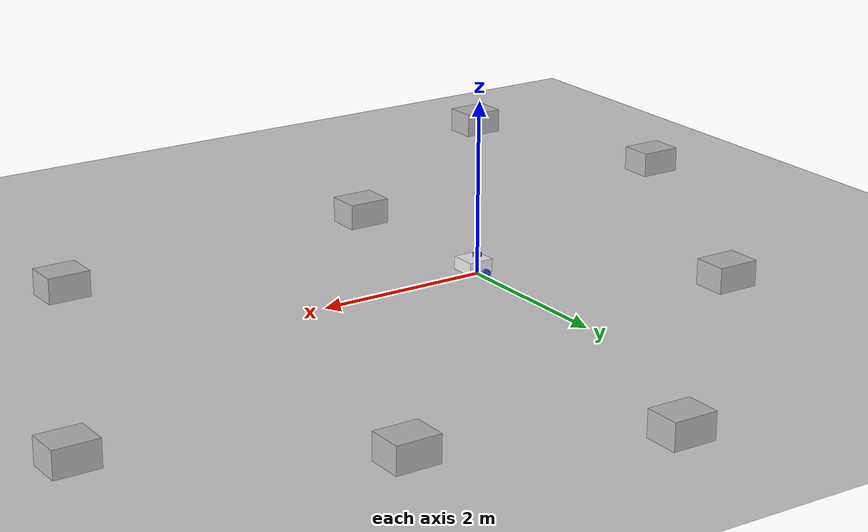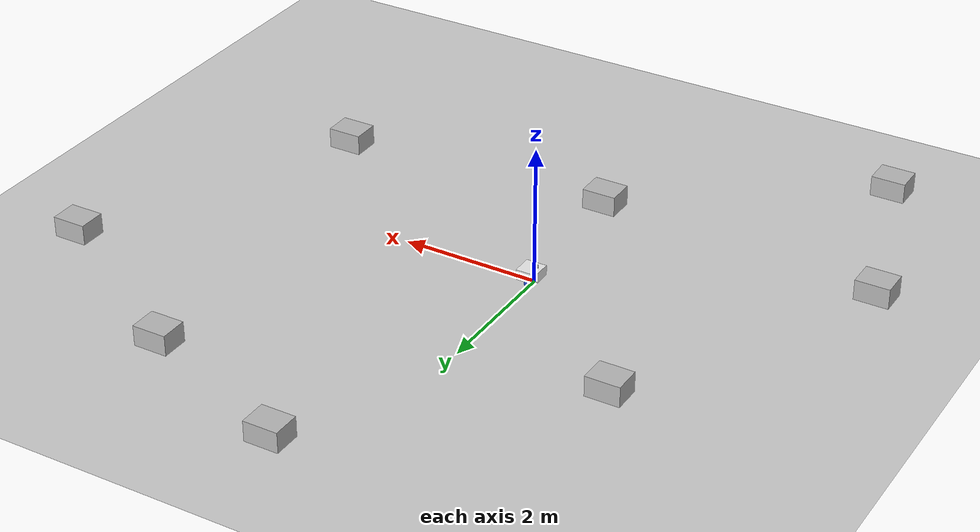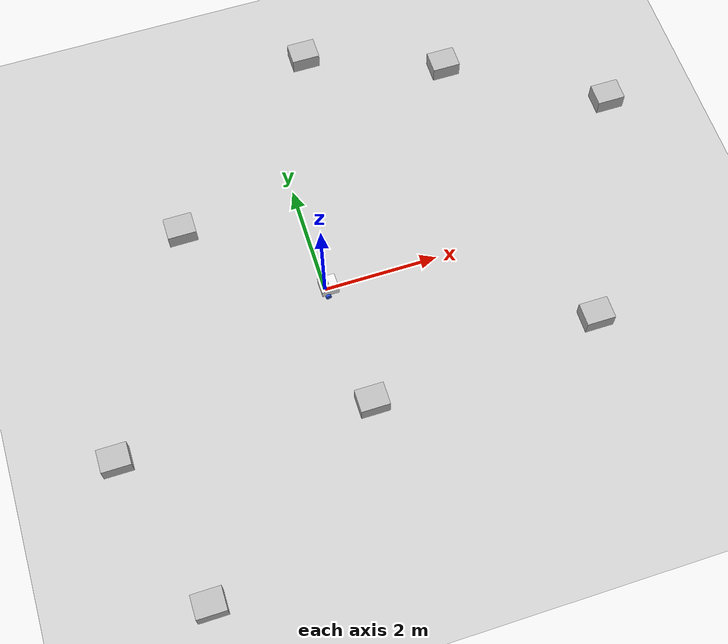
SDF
<sdf version="1.7">
 <world name="default">
  <light name="sun" type="directional">
   <pose>0 0 10 0 -0 0</pose>
   <diffuse>0.8 0.8 0.8 1</diffuse>
   <specular>0.2 0.2 0.2 1</specular>
   <attenuation>
    <range>1000</range>
    <constant>0.9</constant>
    <linear>0.01</linear>
    <quadratic>0.001</quadratic>
   </attenuation>
   <direction>-0.5 0.1 -0.9</direction>
   <spot><inner_angle>0</inner_angle><outer_angle>0</outer_angle><falloff>0</falloff></spot>
  </light>
  <model name="ground_plane">
   <static>1</static>
   <link name="link">
    <collision name="collision">
     <geometry><plane><normal>0 0 1</normal><size>100 100</size></plane></geometry>
     <surface>
      <contact><collide_bitmask>65535</collide_bitmask></contact>
      <friction><ode><mu>100</mu><mu2>50</mu2></ode></friction>
     </surface>
    </collision>
    <visual name="visual">
     <cast_shadows>0</cast_shadows>
     <geometry><plane><normal>0 0 1</normal><size>100 100</size></plane></geometry>
     <material>
      <script><uri>file://media/materials/scripts/gazebo.material</uri><name>Gazebo/Grey</name></script>
     </material>
    </visual>
   </link>
  </model>
  <gravity>0 0 -9.8</gravity>
  <magnetic_field>6e-06 2.3e-05 -4.2e-05</magnetic_field>
  <atmosphere type="adiabatic"/>
  <physics type="ode">
   <max_step_size>0.001</max_step_size>
   <real_time_factor>1</real_time_factor>
   <real_time_update_rate>1000</real_time_update_rate>
  </physics>
  <scene><ambient>0.4 0.4 0.4 1</ambient><background>0.7 0.7 0.7 1</background><shadows>1</shadows></scene>
  <audio><device>default</device></audio>
  <spherical_coordinates>
   <surface_model>EARTH_WGS84</surface_model>
   <latitude_deg>0</latitude_deg>
   <longitude_deg>0</longitude_deg>
   <elevation>0</elevation>
   <heading_deg>0</heading_deg>
  </spherical_coordinates>
  <model name="my_bot">
   <link name="base_link">
    <inertial>
     <pose>0.055714 0 0.078571 0 -0 0</pose>
     <mass>0.7</mass>
     <inertia>
      <ixx>0.0064169</ixx>
      <ixy>0</ixy>
      <ixz>0.00118929</ixz>
      <iyy>0.00745405</iyy>
      <iyz>0</iyz>
      <izz>0.00876214</izz>
     </inertia>
    </inertial>
    <collision name="base_link_fixed_joint_lump__chassis_collision">
     <pose>0.05 0 0.075 0 -0 0</pose>
     <geometry><box><size>0.3 0.3 0.15</size></box></geometry>
    </collision>
    <collision name="base_link_fixed_joint_lump__caster_wheel_collision_1">
     <pose>0.14 0 0 0 -0 0</pose>
     <geometry><sphere><radius>0.05</radius></sphere></geometry>
     <surface><friction><ode><mu>0.001</mu><mu2>0.001</mu2></ode></friction></surface>
    </collision>
    <collision name="base_link_fixed_joint_lump__laser_frame_collision_2">
     <pose>0 0 0.175 0 -0 0</pose>
     <geometry><cylinder><length>0.04</length><radius>0.05</radius></cylinder></geometry>
    </collision>
    <visual name="base_link_fixed_joint_lump__chassis_visual">
     <pose>0.05 0 0.075 0 -0 0</pose>
     <geometry><box><size>0.3 0.3 0.15</size></box></geometry>
     <material>
      <script><name>Gazebo/White</name><uri>file://media/materials/scripts/gazebo.material</uri></script>
     </material>
    </visual>
    <visual name="base_link_fixed_joint_lump__caster_wheel_visual_1">
     <pose>0.14 0 0 0 -0 0</pose>
     <geometry><sphere><radius>0.05</radius></sphere></geometry>
     <material>
      <script><name>Gazebo/Black</name><uri>file://media/materials/scripts/gazebo.material</uri></script>
     </material>
    </visual>
    <visual name="base_link_fixed_joint_lump__laser_frame_visual_2">
     <pose>0 0 0.175 0 -0 0</pose>
     <geometry><cylinder><length>0.04</length><radius>0.05</radius></cylinder></geometry>
     <material>
      <script><name>Gazebo/Black</name><uri>file://media/materials/scripts/gazebo.material</uri></script>
     </material>
    </visual>
    <sensor name="laser" type="ray">
     <visualize>1</visualize>
     <update_rate>10</update_rate>
     <ray>
      <scan>
       <horizontal>
        <samples>360</samples>
        <min_angle>-3.14</min_angle>
        <max_angle>3.14</max_angle>
        <resolution>1</resolution>
       </horizontal>
       <vertical><samples>1</samples><min_angle>0</min_angle><max_angle>0</max_angle></vertical>
      </scan>
      <range><min>0.3</min><max>12</max></range>
     </ray>
     <plugin name="laser_controller" filename="libgazebo_ros_ray_sensor.so">
      <ros><argument>~/out:=scan</argument></ros>
      <output_type>sensor_msgs/LaserScan</output_type>
      <frame_name>laser_frame</frame_name>
     </plugin>
     <pose>0 0 0.175 0 -0 0</pose>
    </sensor>
   </link>
   <joint name="left_wheel_joint" type="revolute">
    <pose relative_to="base_link">0 0.175 0 -1.5708 0 0</pose>
    <parent>base_link</parent>
    <child>left_wheel</child>
    <axis>
     <xyz>0 0 1</xyz>
     <limit><lower>-1e+16</lower><upper>1e+16</upper></limit>
     <dynamics><spring_reference>0</spring_reference><spring_stiffness>0</spring_stiffness></dynamics>
    </axis>
   </joint>
   <link name="left_wheel">
    <pose relative_to="left_wheel_joint">0 0 0 0 -0 0</pose>
    <inertial>
     <mass>0.1</mass>
     <inertia>
      <ixx>7.58333e-05</ixx>
      <ixy>0</ixy>
      <ixz>0</ixz>
      <iyy>7.58333e-05</iyy>
      <iyz>0</iyz>
      <izz>0.000125</izz>
     </inertia>
    </inertial>
    <collision name="left_wheel_collision">
     <geometry><cylinder><length>0.04</length><radius>0.05</radius></cylinder></geometry>
    </collision>
    <visual name="left_wheel_visual">
     <geometry><cylinder><length>0.04</length><radius>0.05</radius></cylinder></geometry>
     <material>
      <script><name>Gazebo/Blue</name><uri>file://media/materials/scripts/gazebo.material</uri></script>
     </material>
    </visual>
   </link>
   <joint name="right_wheel_joint" type="revolute">
    <pose relative_to="base_link">0 -0.175 0 1.5708 -0 0</pose>
    <parent>base_link</parent>
    <child>right_wheel</child>
    <axis>
     <xyz>0 0 -1</xyz>
     <limit><lower>-1e+16</lower><upper>1e+16</upper></limit>
     <dynamics><spring_reference>0</spring_reference><spring_stiffness>0</spring_stiffness></dynamics>
    </axis>
   </joint>
   <link name="right_wheel">
    <pose relative_to="right_wheel_joint">0 0 0 0 -0 0</pose>
    <inertial>
     <mass>0.1</mass>
     <inertia>
      <ixx>7.58333e-05</ixx>
      <ixy>0</ixy>
      <ixz>0</ixz>
      <iyy>7.58333e-05</iyy>
      <iyz>0</iyz>
      <izz>0.000125</izz>
     </inertia>
    </inertial>
    <collision name="right_wheel_collision">
     <geometry><cylinder><length>0.04</length><radius>0.05</radius></cylinder></geometry>
    </collision>
    <visual name="right_wheel_visual">
     <geometry><cylinder><length>0.04</length><radius>0.05</radius></cylinder></geometry>
     <material>
      <script><name>Gazebo/Blue</name><uri>file://media/materials/scripts/gazebo.material</uri></script>
     </material>
    </visual>
   </link>
   <static>0</static>
   <plugin name="diff_drive" filename="libgazebo_ros_diff_drive.so">
    <left_joint>left_wheel_joint</left_joint>
    <right_joint>right_wheel_joint</right_joint>
    <wheel_separation>0.35</wheel_separation>
    <wheel_diameter>0.1</wheel_diameter>
    <max_wheel_torque>200</max_wheel_torque>
    <max_wheel_acceleration>10.0</max_wheel_acceleration>
    <odometry_frame>odom</odometry_frame>
    <robot_base_frame>base_link</robot_base_frame>
    <publish_odom>1</publish_odom>
    <publish_odom_tf>1</publish_odom_tf>
    <publish_wheel_tf>1</publish_wheel_tf>
   </plugin>
   <pose>0.003772 2.7e-05 0.05 0 1.2e-05 7.9e-05</pose>
  </model>
  <model name="cardboard_box">
   <pose>0.127701 -2.23364 0.149 0 -0 0</pose>
   <link name="link">
    <inertial>
     <mass>2</mass>
     <inertia>
      <ixx>0.0416667</ixx>
      <ixy>0</ixy>
      <ixz>0</ixz>
      <iyy>0.0566667</iyy>
      <iyz>0</iyz>
      <izz>0.0683333</izz>
     </inertia>
    </inertial>
    <collision name="collision">
     <geometry><box><size>0.5 0.4 0.3</size></box></geometry>
     <surface>
      <friction><ode><mu>1</mu><mu2>1</mu2></ode></friction>
      <contact><ode><kp>1e+07</kp><kd>1</kd><min_depth>0.001</min_depth><max_vel>0.1</max_vel></ode></contact>
     </surface>
    </collision>
    <visual name="visual">
     <pose>0 0 -0.15 0 -0 0</pose>
     <geometry>
      <mesh><uri>model://cardboard_box/meshes/cardboard_box.dae</uri><scale>1.25932 1.00745 0.755591</scale></mesh>
     </geometry>
    </visual>
   </link>
  </model>
  <model name="cardboard_box_0">
   <pose>-4.09215 -1.94767 0.149 0 -0 0</pose>
   <link name="link">
    <inertial>
     <mass>2</mass>
     <inertia>
      <ixx>0.0416667</ixx>
      <ixy>0</ixy>
      <ixz>0</ixz>
      <iyy>0.0566667</iyy>
      <iyz>0</iyz>
      <izz>0.0683333</izz>
     </inertia>
    </inertial>
    <collision name="collision">
     <geometry><box><size>0.5 0.4 0.3</size></box></geometry>
     <surface>
      <friction><ode><mu>1</mu><mu2>1</mu2></ode></friction>
      <contact><ode><kp>1e+07</kp><kd>1</kd><min_depth>0.001</min_depth><max_vel>0.1</max_vel></ode></contact>
     </surface>
    </collision>
    <visual name="visual">
     <pose>0 0 -0.15 0 -0 0</pose>
     <geometry>
      <mesh><uri>model://cardboard_box/meshes/cardboard_box.dae</uri><scale>1.25932 1.00745 0.755591</scale></mesh>
     </geometry>
    </visual>
   </link>
  </model>
  <model name="cardboard_box_1">
   <pose>-2.08456 1.80442 0.149 0 -0 0</pose>
   <link name="link">
    <inertial>
     <mass>2</mass>
     <inertia>
      <ixx>0.0416667</ixx>
      <ixy>0</ixy>
      <ixz>0</ixz>
      <iyy>0.0566667</iyy>
      <iyz>0</iyz>
      <izz>0.0683333</izz>
     </inertia>
    </inertial>
    <collision name="collision">
     <geometry><box><size>0.5 0.4 0.3</size></box></geometry>
     <surface>
      <friction><ode><mu>1</mu><mu2>1</mu2></ode></friction>
      <contact><ode><kp>1e+07</kp><kd>1</kd><min_depth>0.001</min_depth><max_vel>0.1</max_vel></ode></contact>
     </surface>
    </collision>
    <visual name="visual">
     <pose>0 0 -0.15 0 -0 0</pose>
     <geometry>
      <mesh><uri>model://cardboard_box/meshes/cardboard_box.dae</uri><scale>1.25932 1.00745 0.755591</scale></mesh>
     </geometry>
    </visual>
   </link>
  </model>
  <model name="cardboard_box_2">
   <pose>0.995115 4.70376 0.149 0 -0 0</pose>
   <link name="link">
    <inertial>
     <mass>2</mass>
     <inertia>
      <ixx>0.0416667</ixx>
      <ixy>0</ixy>
      <ixz>0</ixz>
      <iyy>0.0566667</iyy>
      <iyz>0</iyz>
      <izz>0.0683333</izz>
     </inertia>
    </inertial>
    <collision name="collision">
     <geometry><box><size>0.5 0.4 0.3</size></box></geometry>
     <surface>
      <friction><ode><mu>1</mu><mu2>1</mu2></ode></friction>
      <contact><ode><kp>1e+07</kp><kd>1</kd><min_depth>0.001</min_depth><max_vel>0.1</max_vel></ode></contact>
     </surface>
    </collision>
    <visual name="visual">
     <pose>0 0 -0.15 0 -0 0</pose>
     <geometry>
      <mesh><uri>model://cardboard_box/meshes/cardboard_box.dae</uri><scale>1.25932 1.00745 0.755591</scale></mesh>
     </geometry>
    </visual>
   </link>
  </model>
  <model name="cardboard_box_4">
   <pose>3.41307 3.72957 0.149 0 -0 0</pose>
   <link name="link">
    <inertial>
     <mass>2</mass>
     <inertia>
      <ixx>0.0416667</ixx>
      <ixy>0</ixy>
      <ixz>0</ixz>
      <iyy>0.0566667</iyy>
      <iyz>0</iyz>
      <izz>0.0683333</izz>
     </inertia>
    </inertial>
    <collision name="collision">
     <geometry><box><size>0.5 0.4 0.3</size></box></geometry>
     <surface>
      <friction><ode><mu>1</mu><mu2>1</mu2></ode></friction>
      <contact><ode><kp>1e+07</kp><kd>1</kd><min_depth>0.001</min_depth><max_vel>0.1</max_vel></ode></contact>
     </surface>
    </collision>
    <visual name="visual">
     <pose>0 0 -0.15 0 -0 0</pose>
     <geometry>
      <mesh><uri>model://cardboard_box/meshes/cardboard_box.dae</uri><scale>1.25932 1.00745 0.755591</scale></mesh>
     </geometry>
    </visual>
   </link>
  </model>
  <model name="cardboard_box_5">
   <pose>-3.22958 -4.63042 0.149 0 -0 0</pose>
   <link name="link">
    <inertial>
     <mass>2</mass>
     <inertia>
      <ixx>0.0416667</ixx>
      <ixy>0</ixy>
      <ixz>0</ixz>
      <iyy>0.0566667</iyy>
      <iyz>0</iyz>
      <izz>0.0683333</izz>
     </inertia>
    </inertial>
    <collision name="collision">
     <geometry><box><size>0.5 0.4 0.3</size></box></geometry>
     <surface>
      <friction><ode><mu>1</mu><mu2>1</mu2></ode></friction>
      <contact><ode><kp>1e+07</kp><kd>1</kd><min_depth>0.001</min_depth><max_vel>0.1</max_vel></ode></contact>
     </surface>
    </collision>
    <visual name="visual">
     <pose>0 0 -0.15 0 -0 0</pose>
     <geometry>
      <mesh><uri>model://cardboard_box/meshes/cardboard_box.dae</uri><scale>1.25932 1.00745 0.755591</scale></mesh>
     </geometry>
    </visual>
   </link>
  </model>
  <model name="cardboard_box_3">
   <pose>4.18556 -1.91746 0.149021 2e-06 -2e-06 -0</pose>
   <link name="link">
    <inertial>
     <mass>2</mass>
     <inertia>
      <ixx>0.0416667</ixx>
      <ixy>0</ixy>
      <ixz>0</ixz>
      <iyy>0.0566667</iyy>
      <iyz>0</iyz>
      <izz>0.0683333</izz>
     </inertia>
    </inertial>
    <collision name="collision">
     <geometry><box><size>0.5 0.4 0.3</size></box></geometry>
     <surface>
      <friction><ode><mu>1</mu><mu2>1</mu2></ode></friction>
      <contact><ode><kp>1e+07</kp><kd>1</kd><min_depth>0.001</min_depth><max_vel>0.1</max_vel></ode></contact>
     </surface>
    </collision>
    <visual name="visual">
     <pose>0 0 -0.15 0 -0 0</pose>
     <geometry>
      <mesh><uri>model://cardboard_box/meshes/cardboard_box.dae</uri><scale>1.25932 1.00745 0.755591</scale></mesh>
     </geometry>
    </visual>
   </link>
  </model>
  <model name="cardboard_box_6">
   <pose>6.03228 2.12573 0.14951 2e-06 -2e-06 -0</pose>
   <link name="link">
    <inertial>
     <mass>2</mass>
     <inertia>
      <ixx>0.0416667</ixx>
      <ixy>0</ixy>
      <ixz>0</ixz>
      <iyy>0.0566667</iyy>
      <iyz>0</iyz>
      <izz>0.0683333</izz>
     </inertia>
    </inertial>
    <collision name="collision">
     <geometry><box><size>0.5 0.4 0.3</size></box></geometry>
     <surface>
      <friction><ode><mu>1</mu><mu2>1</mu2></ode></friction>
      <contact><ode><kp>1e+07</kp><kd>1</kd><min_depth>0.001</min_depth><max_vel>0.1</max_vel></ode></contact>
     </surface>
    </collision>
    <visual name="visual">
     <pose>0 0 -0.15 0 -0 0</pose>
     <geometry>
      <mesh><uri>model://cardboard_box/meshes/cardboard_box.dae</uri><scale>1.25932 1.00745 0.755591</scale></mesh>
     </geometry>
    </visual>
   </link>
  </model>
 </world>
</sdf>
